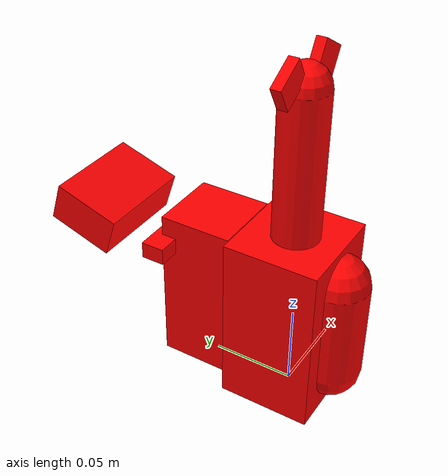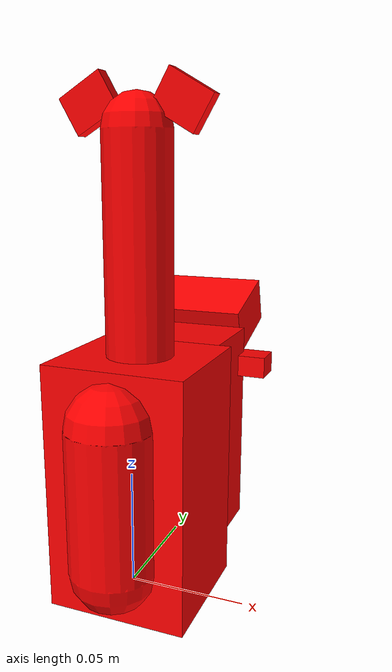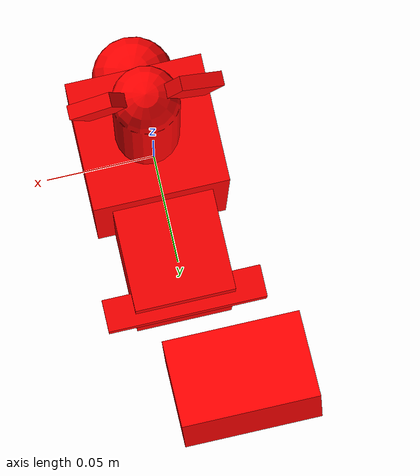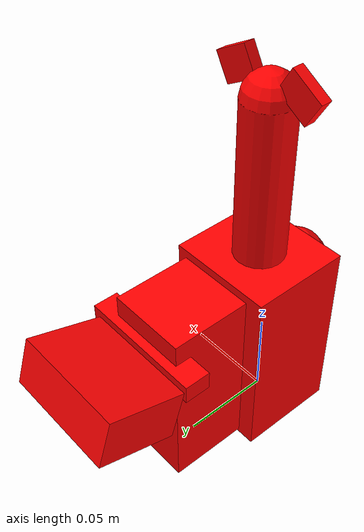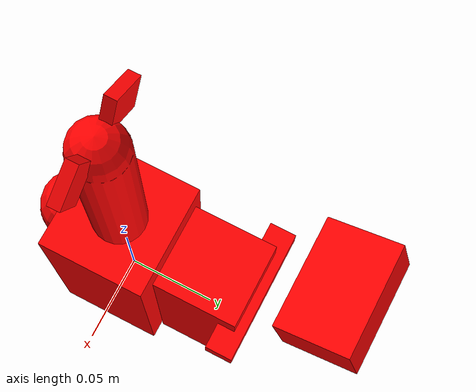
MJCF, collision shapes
<mujoco model="umi_scissors_attached">
    <compiler angle="radian"/>

    <asset>
        <mesh name="umi_scissors_mesh" file="meshes/UMI-scissors.STL" scale="0.0008 0.0008 0.0008"/>
    </asset>

    <default>
        <geom friction="1 0.005 0.0001" condim="3" contype="1" conaffinity="1"/>
    </default>

    <worldbody>
        <!-- 夹爪整体 -->
        <!-- pos 调整为让夹爪底座与机械臂末端对齐 -->
        <!-- 绕 X 轴顺时针旋转 90 度 (-1.57 弧度) -->
        <body name="umi_scissors_base" pos="-0.042 -0.055 0.22" euler="0 1.57 0">
            <inertial mass="0.2" pos="0 0 0.05" diaginertia="0.001 0.001 0.001"/>

            <geom name="scissors_visual" type="mesh" mesh="umi_scissors_mesh" rgba="0.6 0.6 0.6 1"
                  contype="0" conaffinity="0" group="1"/>

            <!-- 碰撞几何体：用简单形状近似剪刀外形 -->
            <geom name="scissors_col_1" type="box" size="0.053 0.028 0.03" pos="0.171 0.058 0.045"
                  rgba="1 0 0 0" group="0"/>
            <geom name="scissors_col_2" type="box" size="0.049 0.022 0.022" pos="0.169 0.11 0.045"
                  rgba="1 0 0 0" group="0"/>
            <geom name="scissors_col_3" type="capsule" size="0.018" fromto="0.2 0.03 0.045 0.14 0.03 0.045"
                  rgba="1 0 0 0" group="0"/>
            <geom name="scissors_col_4" type="capsule" size="0.014" fromto="0.12 0.058 0.045 0.03 0.058 0.045"
                  rgba="1 0 0 0" group="0"/>
            <geom name="scissors_col_5" type="box" size="0.008 0.003 0.01" pos="0.0205 0.058 0.064" euler="0 0.524 0"
                  rgba="1 0 0 0" group="0"/>
            <geom name="scissors_col_6" type="box" size="0.008 0.003 0.01" pos="0.0205 0.058 0.026" euler="0 -0.524 0"
                  rgba="1 0 0 0" group="0"/>
            <geom name="scissors_col_7" type="box" size="0.012 0.02 0.03" pos="0.122 0.17 0.029" euler="0 0 0.31"
                  rgba="1 0 0 0" group="0"/>
            <geom name="scissors_col_8" type="box" size="0.005 0.007 0.035" pos="0.137 0.13 0.045"
                  rgba="1 0 0 0" group="0"/>

            <!-- 末端执行器标记点 (IK求解目标) -->
            <!-- 调整位置以匹配新的模型长度 -->
            <site name="pinch" pos="0 0 0.15" size="0.005" rgba="1 0 0 0" type="sphere"/>

            <!-- 作用点 (Action Point) - 位置待定用红色小球渲染 -->
            <site name="action_point" pos="0.005 0.055 0.045" size="0.001" rgba="1 0 0 0" type="sphere"/>

            <!-- 腕部相机 (参考 robotiq_realsense 的 wrist_cam) -->
            <camera name="wrist_cam" pos="0.12 0.15 0.045" quat="0.701 -0.092 0.701 0.092" fovy="60"/>
        </body>
    </worldbody>

    <!-- 移除 actuation, contact, equality -->
</mujoco>
